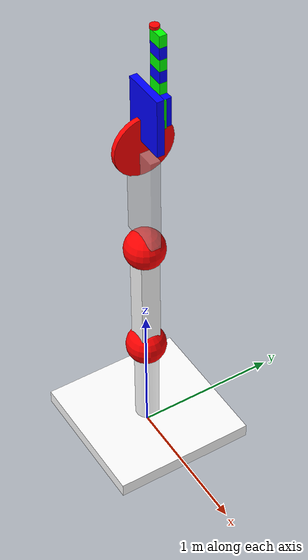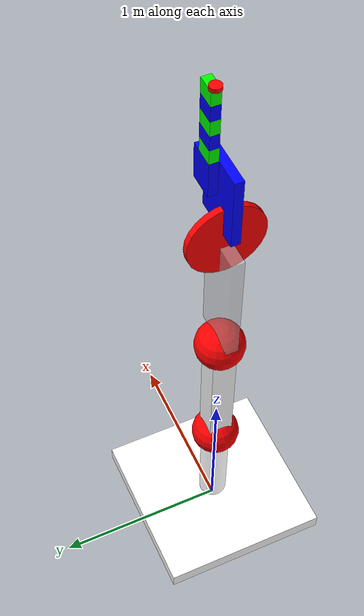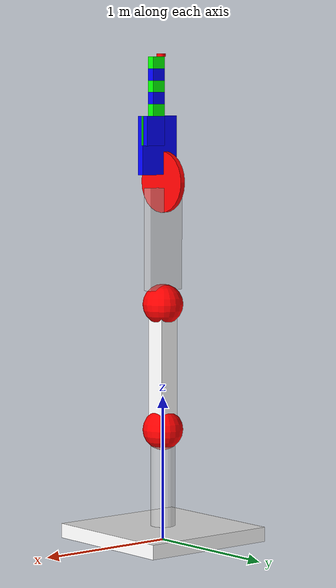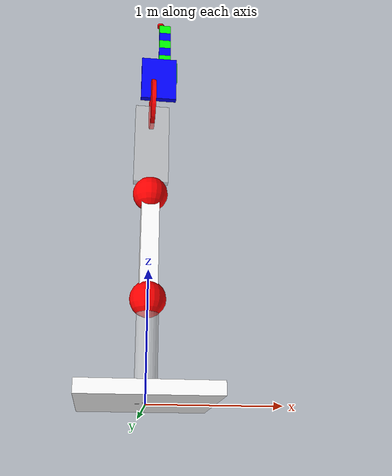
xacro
<robot name="test_robot" xmlns:xacro="http://ros.org/wiki/xacro">
        <xacro:property name="link_l" value="0.7"/>
        <xacro:property name="link_r" value="0.07"/>
        <link name="world"/>
        <joint name="fix" type="fixed">
          <parent link="world"/>
          <child  link="base"/>
        </joint>

        <link name="base">
          <visual>
            <geometry>
              <box size="1 1 0.1" />
            </geometry>
            <origin xyz="0 0 0.05" rpy="0 0 0"/>
            <material name="white">
              <color rgba="1 1 1 1"/>
            </material>
          </visual>
          <collision>
            <geometry>
                <box size="1 1 0.1" />
            </geometry>
            <origin xyz="0 0 0.05" rpy="0 0 0"/>
          </collision>
          <inertial>
            <mass value="1.6"/>
            <origin xyz="0 0 ${link_l*0.}" rpy="0 0 0"/>
            <inertia ixx="0.006051" iyy="0.002" izz="0.009098" ixy="0" ixz="0" iyz="0"/>
          </inertial>
        </link>

        <link name="upperarm">
          <visual>
            <geometry>
              <cylinder length="${link_l}" radius="${link_r*1.2}"/>
            </geometry>
            <origin xyz="0 0 ${link_l*0.5}" rpy="0 0 0"/>
            <material name="gray">
                <color rgba="0.8 0.8 0.8 0.5"/>
            </material>
          </visual>
          <collision>
            <geometry>
                <cylinder length="${link_l-link_r}" radius="${link_r*1.2}"/>
            </geometry>
            <origin xyz="0 0 ${link_l*0.5}" rpy="0 0 0"/>
          </collision>
          <inertial>
            <mass value="1.6"/>
            <origin xyz="0 0 ${link_l*0.}" rpy="0 0 0"/>
            <inertia ixx="0.006051" iyy="0.002" izz="0.009098" ixy="0" ixz="0" iyz="0"/>
          </inertial>
        </link>

        <joint name="base_joint" type="continuous">
            <origin xyz="0 0 0" rpy="0 0 0"/>
            <axis xyz="0 0 1"/>
            <parent link="base"/>
            <child link="upperarm" />
        </joint>
        <transmission name="tranbj">
          <type>transmission_interface/SimpleTransmission</type>
          <joint name="base_joint">
            <hardwareInterface>hardware_interface/PositionJointInterface</hardwareInterface>
          </joint>
          <actuator name="motorbj">
            <hardwareInterface>hardware_interface/PositionJointInterface</hardwareInterface>
            <mechanicalReduction>1</mechanicalReduction>
          </actuator>
        </transmission>

        <link name="upperball">
          <visual>
            <geometry>
              <sphere radius="${link_r*2}" />
            </geometry>
            <origin xyz="0 0 0" rpy="0 0. 0"/>
            <material name="red">
            <color rgba="1.0 0.0 0.0 1.0"/>
          </material>
          </visual>
          <collision>
            <geometry>
                <sphere radius="${link_r*2}" />
            </geometry>
            <origin xyz="0 0 0" rpy="0 0 0"/>
          </collision>
          <inertial>
            <mass value="0.1"/>
            <origin xyz="0 0 0" rpy="0 0 0"/>
            <inertia ixx="0.001" iyy="0.001" izz="0.001" ixy="0" ixz="0" iyz="0"/>
          </inertial>
        </link>
        <joint name="y_joint" type="continuous">
            <origin xyz="0 0 ${link_l+link_r}" rpy="0 0 0"/>
            <axis xyz="0 1 0"/>
            <parent link="upperarm"/>
            <child link="upperball"/>
        </joint>
        <transmission name="trany">
          <type>transmission_interface/SimpleTransmission</type>
          <joint name="y_joint">
            <hardwareInterface>hardware_interface/PositionJointInterface</hardwareInterface>
          </joint>
          <actuator name="motory">
            <hardwareInterface>hardware_interface/PositionJointInterface</hardwareInterface>
            <mechanicalReduction>1</mechanicalReduction>
          </actuator>
        </transmission>

        <link name="middlearm">
          <visual>
            <geometry>
              <box size="${link_r*2} ${link_r*2} ${link_l}" />
            </geometry>
            <origin xyz="0 0 ${link_l*0.5}" rpy="0 0 0"/>
            <material name="white">
              <color rgba="1 1 1 1"/>
            </material>
          </visual>
          <collision>
            <geometry>
                <box size="${link_r*2} ${link_r*2} ${link_l-2*link_r}" />
            </geometry>
            <origin xyz="0 0 ${link_l*0.5+link_r}" rpy="0 0 0"/>
          </collision>
          <inertial>
            <mass value="1.6"/>
            <origin xyz="0 0 0" rpy="0 0 0"/>
            <inertia ixx="0.006051" iyy="0.002" izz="0.009098" ixy="0" ixz="0" iyz="0"/>
          </inertial>
        </link>

        <joint name="uball_joint" type="continuous">
            <origin xyz="0 0 ${link_r*1.414}" rpy="0 0 0"/>
            <axis xyz="0 0 1"/>
            <parent link="upperball"/>
            <child link="middlearm"/>
        </joint>
        <transmission name="tranub">
          <type>transmission_interface/SimpleTransmission</type>
          <joint name="uball_joint">
            <hardwareInterface>hardware_interface/PositionJointInterface</hardwareInterface>
          </joint>
          <actuator name="motorub">
            <hardwareInterface>hardware_interface/PositionJointInterface</hardwareInterface>
            <mechanicalReduction>1</mechanicalReduction>
          </actuator>
        </transmission>

        <link name="middleball">
          <visual>
            <geometry>
              <sphere radius="${link_r*2}" />
            </geometry>
            <origin xyz="0 0 0" rpy="0 0. 0"/>
            <material name="red">
            <color rgba="1.0 0.0 0.0 1.0"/>
          </material>
          </visual>
          <collision>
            <geometry>
                <sphere radius="${link_r*2}" />
            </geometry>
            <origin xyz="0 0 0" rpy="0 0 0"/>
          </collision>
          <inertial>
            <mass value="0.1"/>
            <origin xyz="0 0 0" rpy="0 0 0"/>
            <inertia ixx="0.001" iyy="0.001" izz="0.001" ixy="0" ixz="0" iyz="0"/>
          </inertial>
        </link>

        <joint name="x_joint" type="continuous">
            <origin xyz="0 0 ${link_l+link_r}" rpy="0 0 0"/>
            <axis xyz="1 0 0"/>
            <parent link="middlearm"/>
            <child link="middleball"/>
        </joint>
        <transmission name="tranx">
          <type>transmission_interface/SimpleTransmission</type>
          <joint name="x_joint">
            <hardwareInterface>hardware_interface/PositionJointInterface</hardwareInterface>
          </joint>
          <actuator name="motorx">
            <hardwareInterface>hardware_interface/PositionJointInterface</hardwareInterface>
            <mechanicalReduction>1</mechanicalReduction>
          </actuator>
        </transmission>

        <link name="lowerarm">
          <visual>
            <geometry>
              <box size="${link_r*4} ${link_r} ${link_l}" />
            </geometry>
            <origin xyz="0 0 ${link_l*0.5}" rpy="0 0 0"/>
            <material name="gray">
                <color rgba="0.8 0.8 0.8 0.5"/>
            </material>
          </visual>
          <collision>
            <geometry>
                <box size="${link_r*4} ${link_r} ${link_l-2*link_r}" />
            </geometry>
            <origin xyz="0 0 ${link_l*0.5+link_r}" rpy="0 0 0"/>
          </collision>
          <inertial>
            <mass value="1.6"/>
            <origin xyz="0 0 0" rpy="0 0 0"/>
            <inertia ixx="0.006051" iyy="0.002" izz="0.009098" ixy="0" ixz="0" iyz="0"/>
          </inertial>
        </link>

        <joint name="mball_joint" type="continuous">
            <origin xyz="0 0 ${link_r*1.414}" rpy="0 0 0"/>
            <axis xyz="0 0 1"/>
            <parent link="middleball"/>
            <child link="lowerarm"/>
        </joint>
        <transmission name="tranmb">
          <type>transmission_interface/SimpleTransmission</type>
          <joint name="mball_joint">
            <hardwareInterface>hardware_interface/PositionJointInterface</hardwareInterface>
          </joint>
          <actuator name="motormb">
            <hardwareInterface>hardware_interface/PositionJointInterface</hardwareInterface>
            <mechanicalReduction>1</mechanicalReduction>
          </actuator>
        </transmission>

        <link name="wrist">
          <visual>
            <geometry>
              <cylinder length="${link_r*0.5}" radius="${link_r*3}"/>
            </geometry>
            <origin xyz="0. 0. 0." rpy="0 1.57 0"/>
            <material name="red">
            <color rgba="1.0 0.0 0.0 1.0"/>
          </material>
          </visual>
          <collision>
            <geometry>
              <cylinder length="${link_r*0.5}" radius="${link_r*3}"/>
            </geometry>
            <origin xyz="0. 0. 0." rpy="0 1.57 0"/>
          </collision>
          <inertial>
            <mass value="0.6"/>
            <origin xyz="0 0 0" rpy="0 0 0"/>
            <inertia ixx="0.002051" iyy="0.001" izz="0.003098" ixy="0" ixz="0" iyz="0"/>
          </inertial>
        </link>
        <joint name="wrist_joint" type="prismatic">
            <origin xyz="0. 0. ${link_l+0.6*link_r}" rpy="0 0 0"/>
            <axis xyz="1 0 0"/>
            <parent link="lowerarm"/>
            <child link="wrist"/>
            <limit effort="100" lower="-${link_r*1.5}" upper="${link_r*1.5}" velocity="1.0" />
        </joint>
        <transmission name="tranwr">
          <type>transmission_interface/SimpleTransmission</type>
          <joint name="wrist_joint">
            <hardwareInterface>hardware_interface/PositionJointInterface</hardwareInterface>
          </joint>
          <actuator name="motorwr">
            <hardwareInterface>hardware_interface/PositionJointInterface</hardwareInterface>
            <mechanicalReduction>1</mechanicalReduction>
          </actuator>
        </transmission>

        <link name="hand">
          <visual>
            <geometry>
              <box size="0.3 0.05 0.4" />
            </geometry>
            <origin xyz="0.05 0. 0.2" rpy="0 0 0"/>
            <material name="blue">
              <color rgba="0.0 0.0 1.0 1"/>
            </material>
          </visual>
          <collision>
            <geometry>
              <box size="0.3 0.05 0.4" />
            </geometry>
            <origin xyz="0.05 0. 0.2" rpy="0 0 0"/>
          </collision>
          <inertial>
            <mass value="0.6"/>
            <origin xyz="0 0 0" rpy="0 0 0"/>
            <inertia ixx="0.002051" iyy="0.001" izz="0.003098" ixy="0" ixz="0" iyz="0"/>
          </inertial>
        </link>

        <joint name="hand_joint" type="continuous">
            <origin xyz="0. 0. ${0.05}" rpy="0 0 0"/>
            <axis xyz="1 0 0"/>
            <parent link="wrist"/>
            <child link="hand"/>
        </joint>
        <transmission name="tranhj">
          <type>transmission_interface/SimpleTransmission</type>
          <joint name="hand_joint">
            <hardwareInterface>hardware_interface/PositionJointInterface</hardwareInterface>
          </joint>
          <actuator name="motorhj">
            <hardwareInterface>hardware_interface/PositionJointInterface</hardwareInterface>
            <mechanicalReduction>1</mechanicalReduction>
          </actuator>
        </transmission>
        <link name="dummy_finger">
          <visual>
            <geometry>
              <box size="0.01 0.01 0.2" />
            </geometry>
            <origin xyz="0.005 0.005 0.1" rpy="0 0 0"/>
            <material name="green">
              <color rgba="0.0 1.0 0.0 1"/>
            </material>
          </visual>
          <collision>
            <geometry>
              <box size="0.01 0.01 0.2" />
            </geometry>
            <origin xyz="0. 0. 0.1" rpy="0 0 0"/>
          </collision>
          <inertial>
            <mass value="0.0006"/>
            <origin xyz="0 0 0" rpy="0 0 0"/>
            <inertia ixx="0.00002051" iyy="0.00001" izz="0.00003098" ixy="0" ixz="0" iyz="0"/>
          </inertial>
        </link>
        <joint name="f1_z_pris" type="prismatic">
            <origin xyz="0.2 0.025 0.2" rpy="0 0 0"/>
            <axis xyz="0 0 1"/>
            <parent link="hand"/>
            <child link="dummy_finger"/>
            <limit effort="30" lower="-0.2" upper="0" velocity="30.0"/>
        </joint>
        <transmission name="tranf1zpj">
          <type>transmission_interface/SimpleTransmission</type>
          <joint name="f1_z_pris">
            <hardwareInterface>hardware_interface/PositionJointInterface</hardwareInterface>
          </joint>
          <actuator name="motorf1zpj">
            <hardwareInterface>hardware_interface/PositionJointInterface</hardwareInterface>
            <mechanicalReduction>1</mechanicalReduction>
          </actuator>
        </transmission>
        <link name="finger1">
          <visual>
            <geometry>
              <box size="0.15 0.05 0.2" />
            </geometry>
            <origin xyz="-0.075 0.025 0.1" rpy="0 0 0"/>
            <material name="blue"/>
          </visual>
          <collision>
            <geometry>
              <box size="0.15 0.05 0.2" />
            </geometry>
            <origin xyz="-0.075 0.025 0.1" rpy="0 0 0"/>
          </collision>
          <inertial>
            <mass value="0.6"/>
            <origin xyz="0 0 0" rpy="0 0 0"/>
            <inertia ixx="0.002051" iyy="0.001" izz="0.003098" ixy="0" ixz="0" iyz="0"/>
          </inertial>
        </link>
        <joint name="f1_joint" type="revolute">
            <origin xyz="0 0 0" rpy="0 0 0"/>
            <axis xyz="0 0 1"/>
            <parent link="dummy_finger"/>
            <child link="finger1"/>
            <limit effort="30" lower="-3.14" upper="0" velocity="3.14"/>
        </joint>

        <transmission name="tranf1j">
          <type>transmission_interface/SimpleTransmission</type>
          <joint name="f1_joint">
            <hardwareInterface>hardware_interface/PositionJointInterface</hardwareInterface>
          </joint>
          <actuator name="motorf1j">
            <hardwareInterface>hardware_interface/PositionJointInterface</hardwareInterface>
            <mechanicalReduction>1</mechanicalReduction>
          </actuator>
        </transmission>

        <xacro:macro name ="finger" params="num color j_x j_z">
          <link name="finger${num}">
            <visual>
              <geometry>
                <box size="0.1 0.05 0.08" />
              </geometry>
              <origin xyz="-0.05 0.025 0.04" rpy="0 0 0"/>
              <material name="${color}"/>
            </visual>
            <collision>
              <geometry>
                <box size="0.1 0.05 0.08" />
              </geometry>
              <origin xyz="-0.05 0.025 0.04" rpy="0 0 0"/>
            </collision>
            <inertial>
              <mass value="0.1"/>
              <origin xyz="0 0 0" rpy="0 0 0"/>
              <inertia ixx="0.0002051" iyy="0.0001" izz="0.0003098" ixy="0" ixz="0" iyz="0"/>
            </inertial>
          </link>
          <joint name="f${num}_joint" type="revolute">
              <origin xyz="${j_x} -0.0 ${j_z}" rpy="0 0 0"/>
              <axis xyz="1 0 0"/>
              <parent link="finger${num-1}"/>
              <child link="finger${num}"/>
              <limit effort="30" lower="0" upper="3.14" velocity="3.14"/>
          </joint>
          <transmission name="tranf${num}j">
            <type>transmission_interface/SimpleTransmission</type>
            <joint name="f${num}_joint">
              <hardwareInterface>hardware_interface/PositionJointInterface</hardwareInterface>
            </joint>
            <actuator name="motorf${num}j">
              <hardwareInterface>hardware_interface/PositionJointInterface</hardwareInterface>
              <mechanicalReduction>1</mechanicalReduction>
            </actuator>
          </transmission>
        </xacro:macro>

        <xacro:finger num="2" color="green" j_x="-0.05" j_z="0.2"/>
        <xacro:finger num="3" color="blue" j_x="-0.0" j_z="0.08"/>
        <xacro:finger num="4" color="green" j_x="-0." j_z="0.08"/>
        <xacro:finger num="5" color="blue" j_x="-0." j_z="0.08"/>
        <xacro:finger num="6" color="green" j_x="-0." j_z="0.08"/>

        <link name="fingerend">
          <visual>
            <geometry>
              <cylinder length="0.02" radius="0.03"/>
            </geometry>
            <origin xyz="0 0 0.01" rpy="0 0 0"/>
            <material name="red"/>
          </visual>
          <collision>
            <geometry>
                <cylinder length="0.02" radius="0.03"/>
            </geometry>
            <origin xyz="0 0 0.01" rpy="0 0 0"/>
          </collision>
          <inertial>
            <mass value="0.06"/>
            <origin xyz="0 0 ${link_l*0.}" rpy="0 0 0"/>
            <inertia ixx="0.0006051" iyy="0.0002" izz="0.0009098" ixy="0" ixz="0" iyz="0"/>
          </inertial>
        </link>

        <joint name="fe_joint" type="continuous">
            <origin xyz="-0.09 0.025 0.08" rpy="0 0 0"/>
            <axis xyz="0 0 1"/>
            <parent link="finger6"/>
            <child link="fingerend" />
        </joint>
        <transmission name="tranfej">
          <type>transmission_interface/SimpleTransmission</type>
          <joint name="fe_joint">
            <hardwareInterface>hardware_interface/PositionJointInterface</hardwareInterface>
          </joint>
          <actuator name="motorfej">
            <hardwareInterface>hardware_interface/PositionJointInterface</hardwareInterface>
            <mechanicalReduction>1</mechanicalReduction>
          </actuator>
        </transmission>
        <link name="end_arm"/>
        <joint name="end_arm_joint" type="fixed">
            <origin xyz="-0.18 0.05 0.2" rpy="0 0 0"/>
            <parent link="finger1"/>
            <child link="end_arm"/>
        </joint>
        <link name="end_hand"/>
        <joint name="end_hand_joint" type="fixed">
            <origin xyz="0 0 0.02" rpy="0 0 0"/>
            <parent link="fingerend"/>
            <child link="end_hand"/>
        </joint>

        <gazebo>
          <plugin name="joint_state_publisher" filename="libgazebo_ros_joint_state_publisher.so">
          <jointName>base_joint,y_joint,uball_joint,x_joint,mball_joint,wrist_joint,hand_joint,f1_z_pris,f1_joint,f2_joint,f3_joint,f4_joint,f5_joint,f6_joint,fe_joint</jointName>
          </plugin>
        </gazebo>
        <gazebo>
          <plugin name="gazebo_ros_control" filename="libgazebo_ros_control.so">
            <robotNamespace>/</robotNamespace>
            <controlPeriod>0.001</controlPeriod>
            <robotSimType>gazebo_ros_control/DefaultRobotHWSim</robotSimType>
            <legacyModeNS>true</legacyModeNS>
          </plugin>
        </gazebo>
</robot>
